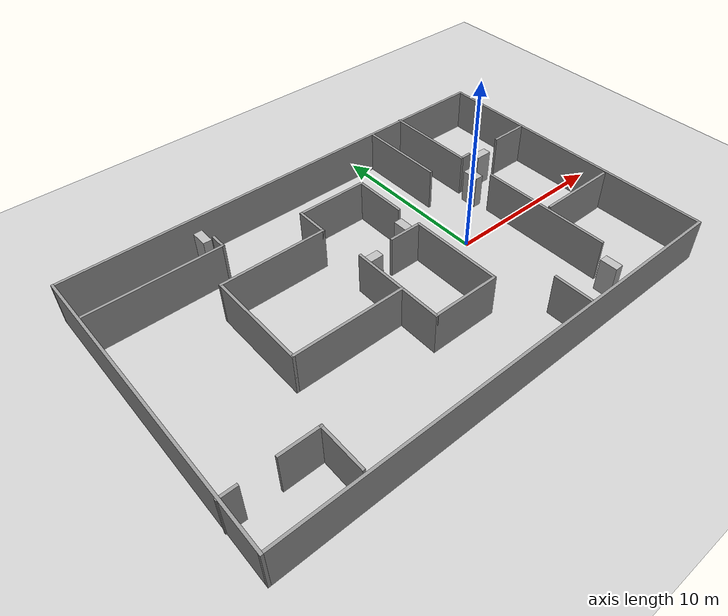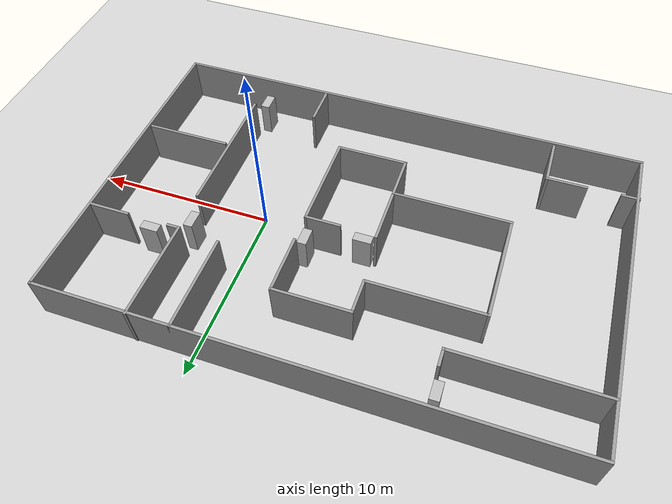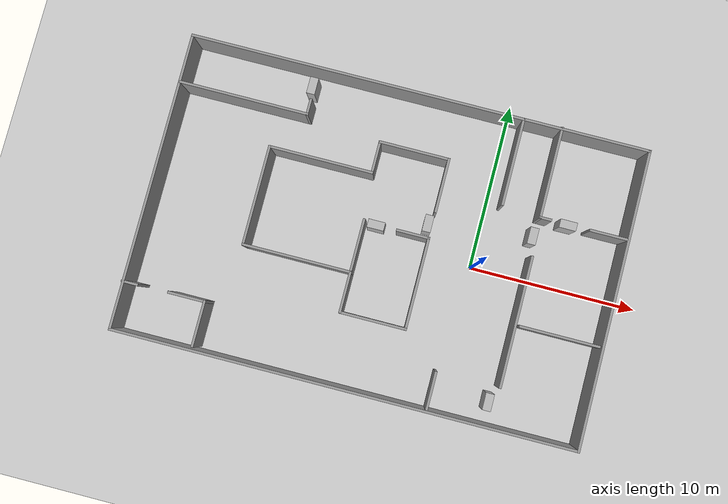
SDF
<?xml version="1.0" ?>
<sdf version="1.4">
  <world name="platform">
    <include>
      <uri>model://ground_plane</uri>
    </include>

    <include>
      <uri>model://sun</uri>
    </include>

    <include>
      <uri>model://building</uri>
    </include>

    <include>
      <uri>model://simple_door</uri>
      <pose>-11.6573 7.92765 1.0 0 0 -1.5707</pose>
      <name>door1</name>
    </include>

    <include>
      <uri>model://simple_door</uri>
      <pose>4.76747 3.7001 1.0 0 -0 0</pose>
      <name>door2</name>
    </include>

    <include>
      <uri>model://simple_door</uri>
      <pose>2.9477 2.5751 1.0 0 -0 -1.5707</pose>
      <name>door3</name>
    </include>

    <include>
      <uri>model://simple_door</uri>
      <pose>-3.1065 1.7675 1.0 0 -0 -1.5707</pose>
      <name>door4</name>
    </include>

    <include>
      <uri>model://simple_door</uri>
      <pose>-5.9957 0.93 1.0 0 -0 0</pose>
      <name>door5</name>
    </include>

    <include>
      <uri>model://simple_door</uri>
      <pose>2.7375 -7.2721 1.0 0 -0 -1.5707</pose>
      <name>door6</name>
    </include>

  </world>
</sdf>

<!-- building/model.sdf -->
<sdf version='1.6'>
  <model name='building'>
    <pose frame=''>-5.45695 0.179801 0 0 -0 0</pose>
    <link name='Wall_0'>
      <collision name='Wall_0_Collision'>
        <geometry>
          <box>
            <size>27.5 0.15 2.5</size>
          </box>
        </geometry>
        <pose frame=''>0 0 1.25 0 -0 0</pose>
      </collision>
      <visual name='Wall_0_Visual'>
        <pose frame=''>0 0 1.25 0 -0 0</pose>
        <geometry>
          <box>
            <size>27.5 0.15 2.5</size>
          </box>
        </geometry>
        <material>
          <script>
            <uri>file://media/materials/scripts/gazebo.material</uri>
            <name>Gazebo/Grey</name>
          </script>
          <ambient>1 1 1 1</ambient>
        </material>
        <meta>
          <layer>0</layer>
        </meta>
      </visual>
      <pose frame=''>0.023261 8.77674 0 0 -0 0</pose>
    </link>
    <link name='Wall_1'>
      <collision name='Wall_1_Collision'>
        <geometry>
          <box>
            <size>17.75 0.15 2.5</size>
          </box>
        </geometry>
        <pose frame=''>0 0 1.25 0 -0 0</pose>
      </collision>
      <visual name='Wall_1_Visual'>
        <pose frame=''>0 0 1.25 0 -0 0</pose>
        <geometry>
          <box>
            <size>17.75 0.15 2.5</size>
          </box>
        </geometry>
        <material>
          <script>
            <uri>file://media/materials/scripts/gazebo.material</uri>
            <name>Gazebo/Grey</name>
          </script>
          <ambient>1 1 1 1</ambient>
        </material>
        <meta>
          <layer>0</layer>
        </meta>
      </visual>
      <pose frame=''>13.6983 -0.023262 0 0 -0 -1.5708</pose>
    </link>
    <link name='Wall_10'>
      <collision name='Wall_10_Collision'>
        <geometry>
          <box>
            <size>6 0.15 2.5</size>
          </box>
        </geometry>
        <pose frame=''>0 0 1.25 0 -0 0</pose>
      </collision>
      <visual name='Wall_10_Visual'>
        <pose frame=''>0 0 1.25 0 -0 0</pose>
        <geometry>
          <box>
            <size>6 0.15 2.5</size>
          </box>
        </geometry>
        <material>
          <script>
            <uri>file://media/materials/scripts/gazebo.material</uri>
            <name>Gazebo/Grey</name>
          </script>
          <ambient>1 1 1 1</ambient>
        </material>
        <meta>
          <layer>0</layer>
        </meta>
      </visual>
      <pose frame=''>-7.60363 0.64106 0 0 -0 -1.5708</pose>
    </link>
    <link name='Wall_11'>
      <collision name='Wall_11_Collision'>
        <geometry>
          <box>
            <size>6.5 0.15 2.5</size>
          </box>
        </geometry>
        <pose frame=''>0 0 1.25 0 -0 0</pose>
      </collision>
      <visual name='Wall_11_Visual'>
        <pose frame=''>0 0 1.25 0 -0 0</pose>
        <geometry>
          <box>
            <size>6.5 0.15 2.5</size>
          </box>
        </geometry>
        <material>
          <script>
            <uri>file://media/materials/scripts/gazebo.material</uri>
            <name>Gazebo/Grey</name>
          </script>
          <ambient>1 1 1 1</ambient>
        </material>
        <meta>
          <layer>0</layer>
        </meta>
      </visual>
      <pose frame=''>-4.42863 -2.28394 0 0 -0 0</pose>
    </link>
    <link name='Wall_12'>
      <collision name='Wall_12_Collision'>
        <geometry>
          <box>
            <size>3.25 0.15 2.5</size>
          </box>
        </geometry>
        <pose frame=''>0 0 1.25 0 -0 0</pose>
      </collision>
      <visual name='Wall_12_Visual'>
        <pose frame=''>0 0 1.25 0 -0 0</pose>
        <geometry>
          <box>
            <size>3.25 0.15 2.5</size>
          </box>
        </geometry>
        <material>
          <script>
            <uri>file://media/materials/scripts/gazebo.material</uri>
            <name>Gazebo/Grey</name>
          </script>
          <ambient>1 1 1 1</ambient>
        </material>
        <meta>
          <layer>0</layer>
        </meta>
      </visual>
      <pose frame=''>-1.25363 -0.73394 0 0 -0 1.5708</pose>
    </link>
    <link name='Wall_14'>
      <collision name='Wall_14_Collision'>
        <geometry>
          <box>
            <size>6.25 0.15 2.5</size>
          </box>
        </geometry>
        <pose frame=''>0 0 1.25 0 -0 0</pose>
      </collision>
      <visual name='Wall_14_Visual'>
        <pose frame=''>0 0 1.25 0 -0 0</pose>
        <geometry>
          <box>
            <size>6.25 0.15 2.5</size>
          </box>
        </geometry>
        <material>
          <script>
            <uri>file://media/materials/scripts/gazebo.material</uri>
            <name>Gazebo/Grey</name>
          </script>
          <ambient>1 1 1 1</ambient>
        </material>
        <meta>
          <layer>0</layer>
        </meta>
      </visual>
      <pose frame=''>-4.55363 3.56606 0 0 -0 0</pose>
    </link>
    <link name='Wall_16'>
      <collision name='Wall_16_Collision'>
        <geometry>
          <box>
            <size>2.75 0.15 2.5</size>
          </box>
        </geometry>
        <pose frame=''>0 0 1.25 0 -0 0</pose>
      </collision>
      <visual name='Wall_16_Visual'>
        <pose frame=''>0 0 1.25 0 -0 0</pose>
        <geometry>
          <box>
            <size>2.75 0.15 2.5</size>
          </box>
        </geometry>
        <material>
          <script>
            <uri>file://media/materials/scripts/gazebo.material</uri>
            <name>Gazebo/Grey</name>
          </script>
          <ambient>1 1 1 1</ambient>
        </material>
        <meta>
          <layer>0</layer>
        </meta>
      </visual>
      <pose frame=''>-8.85978 -7.27668 0 0 -0 1.5708</pose>
    </link>
    <link name='Wall_17'>
      <collision name='Wall_17_Collision'>
        <geometry>
          <box>
            <size>2.25 0.15 2.5</size>
          </box>
        </geometry>
        <pose frame=''>0 0 1.25 0 -0 0</pose>
      </collision>
      <visual name='Wall_17_Visual'>
        <pose frame=''>0 0 1.25 0 -0 0</pose>
        <geometry>
          <box>
            <size>2.25 0.15 2.5</size>
          </box>
        </geometry>
        <material>
          <script>
            <uri>file://media/materials/scripts/gazebo.material</uri>
            <name>Gazebo/Grey</name>
          </script>
          <ambient>1 1 1 1</ambient>
        </material>
        <meta>
          <layer>0</layer>
        </meta>
      </visual>
      <pose frame=''>-9.90978 -5.97668 0 0 -0 3.14159</pose>
    </link>
    <link name='Wall_19'>
      <collision name='Wall_19_Collision'>
        <geometry>
          <box>
            <size>7.75 0.15 2.5</size>
          </box>
        </geometry>
        <pose frame=''>0 0 1.25 0 -0 0</pose>
      </collision>
      <visual name='Wall_19_Visual'>
        <pose frame=''>0 0 1.25 0 -0 0</pose>
        <geometry>
          <box>
            <size>7.75 0.15 2.5</size>
          </box>
        </geometry>
        <material>
          <script>
            <uri>file://media/materials/scripts/gazebo.material</uri>
            <name>Gazebo/Grey</name>
          </script>
          <ambient>1 1 1 1</ambient>
        </material>
        <meta>
          <layer>0</layer>
        </meta>
      </visual>
      <pose frame=''>8.58669 -2.65318 0 0 -0 -1.5708</pose>
    </link>
    <link name='Wall_2'>
      <collision name='Wall_2_Collision'>
        <geometry>
          <box>
            <size>27.5 0.15 2.5</size>
          </box>
        </geometry>
        <pose frame=''>0 0 1.25 0 -0 0</pose>
      </collision>
      <visual name='Wall_2_Visual'>
        <pose frame=''>0 0 1.25 0 -0 0</pose>
        <geometry>
          <box>
            <size>27.5 0.15 2.5</size>
          </box>
        </geometry>
        <material>
          <script>
            <uri>file://media/materials/scripts/gazebo.material</uri>
            <name>Gazebo/Grey</name>
          </script>
          <ambient>1 1 1 1</ambient>
        </material>
        <meta>
          <layer>0</layer>
        </meta>
      </visual>
      <pose frame=''>0.023261 -8.82326 0 0 -0 3.14159</pose>
    </link>
    <link name='Wall_21'>
      <collision name='Wall_21_Collision'>
        <geometry>
          <box>
            <size>4.75 0.15 2.5</size>
          </box>
        </geometry>
        <pose frame=''>0 0 1.25 0 -0 0</pose>
      </collision>
      <visual name='Wall_21_Visual'>
        <pose frame=''>0 0 1.25 0 -0 0</pose>
        <geometry>
          <box>
            <size>4.75 0.15 2.5</size>
          </box>
        </geometry>
        <material>
          <script>
            <uri>file://media/materials/scripts/gazebo.material</uri>
            <name>Gazebo/Grey</name>
          </script>
          <ambient>1 1 1 1</ambient>
        </material>
        <meta>
          <layer>0</layer>
        </meta>
      </visual>
      <pose frame=''>11.1658 -2.85424 0 0 -0 0</pose>
    </link>
    <link name='Wall_23'>
      <collision name='Wall_23_Collision'>
        <geometry>
          <box>
            <size>2.5 0.15 2.5</size>
          </box>
        </geometry>
        <pose frame=''>0 0 1.25 0 -0 0</pose>
      </collision>
      <visual name='Wall_23_Visual'>
        <pose frame=''>0 0 1.25 0 -0 0</pose>
        <geometry>
          <box>
            <size>2.5 0.15 2.5</size>
          </box>
        </geometry>
        <material>
          <script>
            <uri>file://media/materials/scripts/gazebo.material</uri>
            <name>Gazebo/Grey</name>
          </script>
          <ambient>1 1 1 1</ambient>
        </material>
        <meta>
          <layer>0</layer>
        </meta>
      </visual>
      <pose frame=''>-1.25363 -3.45894 0 0 -0 -1.5708</pose>
    </link>
    <link name='Wall_24'>
      <collision name='Wall_24_Collision'>
        <geometry>
          <box>
            <size>4 0.15 2.5</size>
          </box>
        </geometry>
        <pose frame=''>0 0 1.25 0 -0 0</pose>
      </collision>
      <visual name='Wall_24_Visual'>
        <pose frame=''>0 0 1.25 0 -0 0</pose>
        <geometry>
          <box>
            <size>4 0.15 2.5</size>
          </box>
        </geometry>
        <material>
          <script>
            <uri>file://media/materials/scripts/gazebo.material</uri>
            <name>Gazebo/Grey</name>
          </script>
          <ambient>1 1 1 1</ambient>
        </material>
        <meta>
          <layer>0</layer>
        </meta>
      </visual>
      <pose frame=''>0.67137 -4.63394 0 0 -0 0</pose>
    </link>
    <link name='Wall_25'>
      <collision name='Wall_25_Collision'>
        <geometry>
          <box>
            <size>5.5 0.15 2.5</size>
          </box>
        </geometry>
        <pose frame=''>0 0 1.25 0 -0 0</pose>
      </collision>
      <visual name='Wall_25_Visual'>
        <pose frame=''>0 0 1.25 0 -0 0</pose>
        <geometry>
          <box>
            <size>5.5 0.15 2.5</size>
          </box>
        </geometry>
        <material>
          <script>
            <uri>file://media/materials/scripts/gazebo.material</uri>
            <name>Gazebo/Grey</name>
          </script>
          <ambient>1 1 1 1</ambient>
        </material>
        <meta>
          <layer>0</layer>
        </meta>
      </visual>
      <pose frame=''>2.59637 -1.95894 0 0 -0 1.5708</pose>
    </link>
    <link name='Wall_26'>
      <collision name='Wall_26_Collision'>
        <geometry>
          <box>
            <size>2 0.15 2.5</size>
          </box>
        </geometry>
        <pose frame=''>0 0 1.25 0 -0 0</pose>
      </collision>
      <visual name='Wall_26_Visual'>
        <pose frame=''>0 0 1.25 0 -0 0</pose>
        <geometry>
          <box>
            <size>2 0.15 2.5</size>
          </box>
        </geometry>
        <material>
          <script>
            <uri>file://media/materials/scripts/gazebo.material</uri>
            <name>Gazebo/Grey</name>
          </script>
          <ambient>1 1 1 1</ambient>
        </material>
        <meta>
          <layer>0</layer>
        </meta>
      </visual>
      <pose frame=''>1.67137 0.71606 0 0 -0 3.14159</pose>
    </link>
    <link name='Wall_28'>
      <collision name='Wall_28_Collision'>
        <geometry>
          <box>
            <size>7.75 0.15 2.5</size>
          </box>
        </geometry>
        <pose frame=''>0 0 1.25 0 -0 0</pose>
      </collision>
      <visual name='Wall_28_Visual'>
        <pose frame=''>0 0 1.25 0 -0 0</pose>
        <geometry>
          <box>
            <size>7.75 0.15 2.5</size>
          </box>
        </geometry>
        <material>
          <script>
            <uri>file://media/materials/scripts/gazebo.material</uri>
            <name>Gazebo/Grey</name>
          </script>
          <ambient>1 1 1 1</ambient>
        </material>
        <meta>
          <layer>0</layer>
        </meta>
      </visual>
      <pose frame=''>-9.80522 5.93878 0 0 -0 0</pose>
    </link>
    <link name='Wall_29'>
      <collision name='Wall_29_Collision'>
        <geometry>
          <box>
            <size>1 0.15 2.5</size>
          </box>
        </geometry>
        <pose frame=''>0 0 1.25 0 -0 0</pose>
      </collision>
      <visual name='Wall_29_Visual'>
        <pose frame=''>0 0 1.25 0 -0 0</pose>
        <geometry>
          <box>
            <size>1 0.15 2.5</size>
          </box>
        </geometry>
        <material>
          <script>
            <uri>file://media/materials/scripts/gazebo.material</uri>
            <name>Gazebo/Grey</name>
          </script>
          <ambient>1 1 1 1</ambient>
        </material>
        <meta>
          <layer>0</layer>
        </meta>
      </visual>
      <pose frame=''>-6.00521 6.36378 0 0 -0 1.5708</pose>
    </link>
    <link name='Wall_3'>
      <collision name='Wall_3_Collision'>
        <geometry>
          <box>
            <size>17.75 0.15 2.5</size>
          </box>
        </geometry>
        <pose frame=''>0 0 1.25 0 -0 0</pose>
      </collision>
      <visual name='Wall_3_Visual'>
        <pose frame=''>0 0 1.25 0 -0 0</pose>
        <geometry>
          <box>
            <size>17.75 0.15 2.5</size>
          </box>
        </geometry>
        <material>
          <script>
            <uri>file://media/materials/scripts/gazebo.material</uri>
            <name>Gazebo/Grey</name>
          </script>
          <ambient>1 1 1 1</ambient>
        </material>
        <meta>
          <layer>0</layer>
        </meta>
      </visual>
      <pose frame=''>-13.6517 -0.023262 0 0 -0 1.5708</pose>
    </link>
    <link name='Wall_32'>
      <collision name='Wall_32_Collision'>
        <geometry>
          <box>
            <size>1 0.15 2.5</size>
          </box>
        </geometry>
        <pose frame=''>0 0 1.25 0 -0 0</pose>
      </collision>
      <visual name='Wall_32_Visual'>
        <pose frame=''>0 0 1.25 0 -0 0</pose>
        <geometry>
          <box>
            <size>1 0.15 2.5</size>
          </box>
        </geometry>
        <material>
          <script>
            <uri>file://media/materials/scripts/gazebo.material</uri>
            <name>Gazebo/Grey</name>
          </script>
          <ambient>1 1 1 1</ambient>
        </material>
        <meta>
          <layer>0</layer>
        </meta>
      </visual>
      <pose frame=''>-13.2733 -6.01787 0 0 -0 0</pose>
    </link>
    <link name='Wall_34'>
      <collision name='Wall_34_Collision'>
        <geometry>
          <box>
            <size>2 0.15 2.5</size>
          </box>
        </geometry>
        <pose frame=''>0 0 1.25 0 -0 0</pose>
      </collision>
      <visual name='Wall_34_Visual'>
        <pose frame=''>0 0 1.25 0 -0 0</pose>
        <geometry>
          <box>
            <size>2 0.15 2.5</size>
          </box>
        </geometry>
        <material>
          <script>
            <uri>file://media/materials/scripts/gazebo.material</uri>
            <name>Gazebo/Grey</name>
          </script>
          <ambient>1 1 1 1</ambient>
        </material>
        <meta>
          <layer>0</layer>
        </meta>
      </visual>
      <pose frame=''>-1.50363 4.49106 0 0 -0 1.5708</pose>
    </link>
    <link name='Wall_35'>
      <collision name='Wall_35_Collision'>
        <geometry>
          <box>
            <size>4.25 0.15 2.5</size>
          </box>
        </geometry>
        <pose frame=''>0 0 1.25 0 -0 0</pose>
      </collision>
      <visual name='Wall_35_Visual'>
        <pose frame=''>0 0 1.25 0 -0 0</pose>
        <geometry>
          <box>
            <size>4.25 0.15 2.5</size>
          </box>
        </geometry>
        <material>
          <script>
            <uri>file://media/materials/scripts/gazebo.material</uri>
            <name>Gazebo/Grey</name>
          </script>
          <ambient>1 1 1 1</ambient>
        </material>
        <meta>
          <layer>0</layer>
        </meta>
      </visual>
      <pose frame=''>0.54637 5.41606 0 0 -0 0</pose>
    </link>
    <link name='Wall_36'>
      <collision name='Wall_36_Collision'>
        <geometry>
          <box>
            <size>3.25 0.15 2.5</size>
          </box>
        </geometry>
        <pose frame=''>0 0 1.25 0 -0 0</pose>
      </collision>
      <visual name='Wall_36_Visual'>
        <pose frame=''>0 0 1.25 0 -0 0</pose>
        <geometry>
          <box>
            <size>3.25 0.15 2.5</size>
          </box>
        </geometry>
        <material>
          <script>
            <uri>file://media/materials/scripts/gazebo.material</uri>
            <name>Gazebo/Grey</name>
          </script>
          <ambient>1 1 1 1</ambient>
        </material>
        <meta>
          <layer>0</layer>
        </meta>
      </visual>
      <pose frame=''>2.59637 3.86606 0 0 -0 -1.5708</pose>
    </link>
    <link name='Wall_38'>
      <collision name='Wall_38_Collision'>
        <geometry>
          <box>
            <size>5.25 0.15 2.5</size>
          </box>
        </geometry>
        <pose frame=''>0 0 1.25 0 -0 0</pose>
      </collision>
      <visual name='Wall_38_Visual'>
        <pose frame=''>0 0 1.25 0 -0 0</pose>
        <geometry>
          <box>
            <size>5.25 0.15 2.5</size>
          </box>
        </geometry>
        <material>
          <script>
            <uri>file://media/materials/scripts/gazebo.material</uri>
            <name>Gazebo/Grey</name>
          </script>
          <ambient>1 1 1 1</ambient>
        </material>
        <meta>
          <layer>0</layer>
        </meta>
      </visual>
      <pose frame=''>6.21397 6.22674 0 0 -0 -1.5708</pose>
    </link>
    <link name='Wall_40'>
      <collision name='Wall_40_Collision'>
        <geometry>
          <box>
            <size>2.25 0.15 2.5</size>
          </box>
        </geometry>
        <pose frame=''>0 0 1.25 0 -0 0</pose>
      </collision>
      <visual name='Wall_40_Visual'>
        <pose frame=''>0 0 1.25 0 -0 0</pose>
        <geometry>
          <box>
            <size>2.25 0.15 2.5</size>
          </box>
        </geometry>
        <material>
          <script>
            <uri>file://media/materials/scripts/gazebo.material</uri>
            <name>Gazebo/Grey</name>
          </script>
          <ambient>1 1 1 1</ambient>
        </material>
        <meta>
          <layer>0</layer>
        </meta>
      </visual>
      <pose frame=''>4.86478 -7.61973 0 0 -0 1.5708</pose>
    </link>
    <link name='Wall_5'>
      <collision name='Wall_5_Collision'>
        <geometry>
          <box>
            <size>5.5 0.15 2.5</size>
          </box>
        </geometry>
        <pose frame=''>0 0 1.25 0 -0 0</pose>
      </collision>
      <visual name='Wall_5_Visual'>
        <pose frame=''>0 0 1.25 0 -0 0</pose>
        <geometry>
          <box>
            <size>5.5 0.15 2.5</size>
          </box>
        </geometry>
        <material>
          <script>
            <uri>file://media/materials/scripts/gazebo.material</uri>
            <name>Gazebo/Grey</name>
          </script>
          <ambient>1 1 1 1</ambient>
        </material>
        <meta>
          <layer>0</layer>
        </meta>
      </visual>
      <pose frame=''>8.49364 6.14826 0 0 -0 -1.5708</pose>
    </link>
    <link name='Wall_6'>
      <collision name='Wall_6_Collision'>
        <geometry>
          <box>
            <size>0.75 0.15 2.5</size>
          </box>
        </geometry>
        <pose frame=''>0 0 1.25 0 -0 0</pose>
      </collision>
      <visual name='Wall_6_Visual'>
        <pose frame=''>0 0 1.25 0 -0 0</pose>
        <geometry>
          <box>
            <size>0.75 0.15 2.5</size>
          </box>
        </geometry>
        <material>
          <script>
            <uri>file://media/materials/scripts/gazebo.material</uri>
            <name>Gazebo/Grey</name>
          </script>
          <ambient>1 1 1 1</ambient>
        </material>
        <meta>
          <layer>0</layer>
        </meta>
      </visual>
      <pose frame=''>8.79364 3.47326 0 0 -0 0</pose>
    </link>
    <link name='Wall_8'>
      <collision name='Wall_8_Collision'>
        <geometry>
          <box>
            <size>2.25 0.15 2.5</size>
          </box>
        </geometry>
        <pose frame=''>0 0 1.25 0 -0 0</pose>
      </collision>
      <visual name='Wall_8_Visual'>
        <pose frame=''>0 0 1.25 0 -0 0</pose>
        <geometry>
          <box>
            <size>2.25 0.15 2.5</size>
          </box>
        </geometry>
        <material>
          <script>
            <uri>file://media/materials/scripts/gazebo.material</uri>
            <name>Gazebo/Grey</name>
          </script>
          <ambient>1 1 1 1</ambient>
        </material>
        <meta>
          <layer>0</layer>
        </meta>
      </visual>
      <pose frame=''>12.5212 3.47301 0 0 -0 0</pose>
    </link>
    <static>1</static>
  </model>
</sdf>

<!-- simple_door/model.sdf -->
<sdf version='1.6'>
  <model name='simple_door'>
    <pose>0 0 0.5 0 0 0</pose>
    <static>true</static>
    <link name="link">
      <inertial>
        <mass>400</mass>
        <inertia> <!-- inertias are tricky to compute -->
          <!-- http://gazebosim.org/tutorials?tut=inertia&cat=build_robot -->
          <ixx>133</ixx>       <!-- for a box: ixx = 0.083 * mass * (y*y + z*z) -->
          <ixy>0.0</ixy>         <!-- for a box: ixy = 0 -->
          <ixz>0.0</ixz>         <!-- for a box: ixz = 0 -->
          <iyy>267</iyy>       <!-- for a box: iyy = 0.083 * mass * (x*x + z*z) -->
          <iyz>0.0</iyz>         <!-- for a box: iyz = 0 -->
          <izz>33</izz>       <!-- for a box: izz = 0.083 * mass * (x*x + y*y) -->
        </inertia>
      </inertial>
      <collision name="collision">
        <geometry>
          <box>
            <size>1 0.5 2</size>
          </box>
        </geometry>
      </collision>
      <visual name="visual">
        <geometry>
          <box>
            <size>1 0.5 2</size>
          </box>
        </geometry>
      </visual>
    </link>
  </model>
</sdf>
